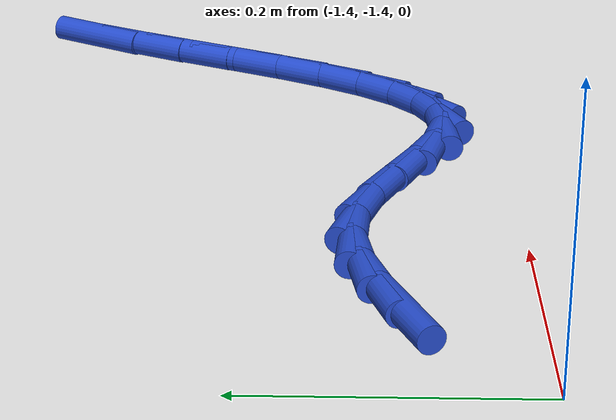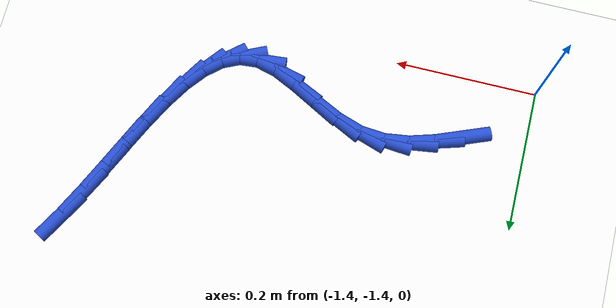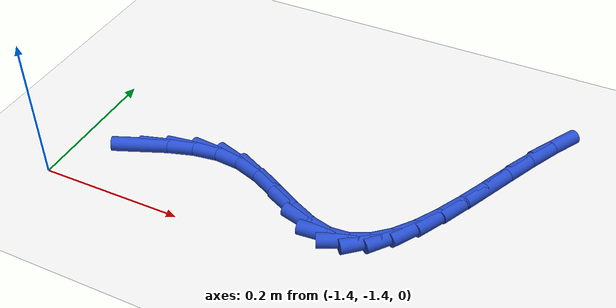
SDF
<sdf version="1.6">
 <world name="default">
  <model name="ground_plane">
   <static>1</static>
   <link name="link">
    <collision name="collision">
     <geometry><plane><normal>0 0 1</normal><size>100 100</size></plane></geometry>
     <surface><friction><ode><mu>100</mu><mu2>50</mu2></ode></friction></surface>
    </collision>
    <visual name="visual">
     <cast_shadows>0</cast_shadows>
     <geometry><plane><normal>0 0 1</normal><size>100 100</size></plane></geometry>
     <material>
      <script><uri>file://media/materials/scripts/gazebo.material</uri><name>Gazebo/WhiteGlow</name></script>
     </material>
    </visual>
   </link>
  </model>
  <model name="line">
   <link name="link_182">
    <pose>-1.3107985322751012 -1.3107673132790016 0.01 0 1.57 0.3865926118420704</pose>
    <collision name="collision">
     <geometry><cylinder><radius>0.01</radius><length>0.08</length></cylinder></geometry>
    </collision>
    <visual name="visual">
     <material>
      <script><name>Gazebo/Blue</name><uri>file://media/materials/scripts/gazebo.material</uri></script>
     </material>
     <geometry><cylinder><radius>0.01</radius><length>0.08</length></cylinder></geometry>
    </visual>
   </link>
   <link name="link_183">
    <pose>-1.2760528738541292 -1.2966231427445267 0.01 0 1.57 0.2972645721738736</pose>
    <collision name="collision">
     <geometry><cylinder><radius>0.01</radius><length>0.08</length></cylinder></geometry>
    </collision>
    <visual name="visual">
     <material>
      <script><name>Gazebo/Blue</name><uri>file://media/materials/scripts/gazebo.material</uri></script>
     </material>
     <geometry><cylinder><radius>0.01</radius><length>0.08</length></cylinder></geometry>
    </visual>
   </link>
   <link name="link_184">
    <pose>-1.2412891281372862 -1.2859735613233292 0.01 0 1.57 0.14160625556303155</pose>
    <collision name="collision">
     <geometry><cylinder><radius>0.01</radius><length>0.08</length></cylinder></geometry>
    </collision>
    <visual name="visual">
     <material>
      <script><name>Gazebo/Blue</name><uri>file://media/materials/scripts/gazebo.material</uri></script>
     </material>
     <geometry><cylinder><radius>0.01</radius><length>0.08</length></cylinder></geometry>
    </visual>
   </link>
   <link name="link_185">
    <pose>-1.2064455579504396 -1.281006247272323 0.01 0 1.57 -0.0827584258536055</pose>
    <collision name="collision">
     <geometry><cylinder><radius>0.01</radius><length>0.08</length></cylinder></geometry>
    </collision>
    <visual name="visual">
     <material>
      <script><name>Gazebo/Blue</name><uri>file://media/materials/scripts/gazebo.material</uri></script>
     </material>
     <geometry><cylinder><radius>0.01</radius><length>0.08</length></cylinder></geometry>
    </visual>
   </link>
   <link name="link_186">
    <pose>-1.1714605035194308 -1.2839081834110608 0.01 0 1.57 -0.31955640378051064</pose>
    <collision name="collision">
     <geometry><cylinder><radius>0.01</radius><length>0.08</length></cylinder></geometry>
    </collision>
    <visual name="visual">
     <material>
      <script><name>Gazebo/Blue</name><uri>file://media/materials/scripts/gazebo.material</uri></script>
     </material>
     <geometry><cylinder><radius>0.01</radius><length>0.08</length></cylinder></geometry>
    </visual>
   </link>
   <link name="link_187">
    <pose>-1.1364241979647156 -1.2955015976285895 0.01 0 1.57 -0.4549689984536196</pose>
    <collision name="collision">
     <geometry><cylinder><radius>0.01</radius><length>0.08</length></cylinder></geometry>
    </collision>
    <visual name="visual">
     <material>
      <script><name>Gazebo/Blue</name><uri>file://media/materials/scripts/gazebo.material</uri></script>
     </material>
     <geometry><cylinder><radius>0.01</radius><length>0.08</length></cylinder></geometry>
    </visual>
   </link>
   <link name="link_188">
    <pose>-1.1018961057134669 -1.3123926829493828 0.01 0 1.57 -0.49428625190031267</pose>
    <collision name="collision">
     <geometry><cylinder><radius>0.01</radius><length>0.08</length></cylinder></geometry>
    </collision>
    <visual name="visual">
     <material>
      <script><name>Gazebo/Blue</name><uri>file://media/materials/scripts/gazebo.material</uri></script>
     </material>
     <geometry><cylinder><radius>0.01</radius><length>0.08</length></cylinder></geometry>
    </visual>
   </link>
   <link name="link_189">
    <pose>-1.0685260188930086 -1.3303760396341204 0.01 0 1.57 -0.44029347188843426</pose>
    <collision name="collision">
     <geometry><cylinder><radius>0.01</radius><length>0.08</length></cylinder></geometry>
    </collision>
    <visual name="visual">
     <material>
      <script><name>Gazebo/Blue</name><uri>file://media/materials/scripts/gazebo.material</uri></script>
     </material>
     <geometry><cylinder><radius>0.01</radius><length>0.08</length></cylinder></geometry>
    </visual>
   </link>
   <link name="link_190">
    <pose>-1.0369637296306653 -1.3452462679434818 0.01 0 1.57 -0.25423167847657807</pose>
    <collision name="collision">
     <geometry><cylinder><radius>0.01</radius><length>0.08</length></cylinder></geometry>
    </collision>
    <visual name="visual">
     <material>
      <script><name>Gazebo/Blue</name><uri>file://media/materials/scripts/gazebo.material</uri></script>
     </material>
     <geometry><cylinder><radius>0.01</radius><length>0.08</length></cylinder></geometry>
    </visual>
   </link>
   <link name="link_191">
    <pose>-1.0078566682148198 -1.3528098660920425 0.01 0 1.57 0.08619695661308117</pose>
    <collision name="collision">
     <geometry><cylinder><radius>0.01</radius><length>0.08</length></cylinder></geometry>
    </collision>
    <visual name="visual">
     <material>
      <script><name>Gazebo/Blue</name><uri>file://media/materials/scripts/gazebo.material</uri></script>
     </material>
     <geometry><cylinder><radius>0.01</radius><length>0.08</length></cylinder></geometry>
    </visual>
   </link>
   <link name="link_192">
    <pose>-0.9815225482658552 -1.3505343065656412 0.01 0 1.57 0.44133622871466277</pose>
    <collision name="collision">
     <geometry><cylinder><radius>0.01</radius><length>0.08</length></cylinder></geometry>
    </collision>
    <visual name="visual">
     <material>
      <script><name>Gazebo/Blue</name><uri>file://media/materials/scripts/gazebo.material</uri></script>
     </material>
     <geometry><cylinder><radius>0.01</radius><length>0.08</length></cylinder></geometry>
    </visual>
   </link>
   <link name="link_193">
    <pose>-0.9576136185029434 -1.339239394888213 0.01 0 1.57 0.7167172054319497</pose>
    <collision name="collision">
     <geometry><cylinder><radius>0.01</radius><length>0.08</length></cylinder></geometry>
    </collision>
    <visual name="visual">
     <material>
      <script><name>Gazebo/Blue</name><uri>file://media/materials/scripts/gazebo.material</uri></script>
     </material>
     <geometry><cylinder><radius>0.01</radius><length>0.08</length></cylinder></geometry>
    </visual>
   </link>
   <link name="link_194">
    <pose>-0.9357020455100151 -1.3201483567899803 0.01 0 1.57 0.9005644696736992</pose>
    <collision name="collision">
     <geometry><cylinder><radius>0.01</radius><length>0.08</length></cylinder></geometry>
    </collision>
    <visual name="visual">
     <material>
      <script><name>Gazebo/Blue</name><uri>file://media/materials/scripts/gazebo.material</uri></script>
     </material>
     <geometry><cylinder><radius>0.01</radius><length>0.08</length></cylinder></geometry>
    </visual>
   </link>
   <link name="link_195">
    <pose>-0.9153599958710017 -1.2944844180011652 0.01 0 1.57 1.0164548919703689</pose>
    <collision name="collision">
     <geometry><cylinder><radius>0.01</radius><length>0.08</length></cylinder></geometry>
    </collision>
    <visual name="visual">
     <material>
      <script><name>Gazebo/Blue</name><uri>file://media/materials/scripts/gazebo.material</uri></script>
     </material>
     <geometry><cylinder><radius>0.01</radius><length>0.08</length></cylinder></geometry>
    </visual>
   </link>
   <link name="link_196">
    <pose>-0.8961596361698344 -1.26347080425199 0.01 0 1.57 1.0865026376999591</pose>
    <collision name="collision">
     <geometry><cylinder><radius>0.01</radius><length>0.08</length></cylinder></geometry>
    </collision>
    <visual name="visual">
     <material>
      <script><name>Gazebo/Blue</name><uri>file://media/materials/scripts/gazebo.material</uri></script>
     </material>
     <geometry><cylinder><radius>0.01</radius><length>0.08</length></cylinder></geometry>
    </visual>
   </link>
   <link name="link_197">
    <pose>-0.8776731329904441 -1.228330741272676 0.01 0 1.57 1.1245653218309286</pose>
    <collision name="collision">
     <geometry><cylinder><radius>0.01</radius><length>0.08</length></cylinder></geometry>
    </collision>
    <visual name="visual">
     <material>
      <script><name>Gazebo/Blue</name><uri>file://media/materials/scripts/gazebo.material</uri></script>
     </material>
     <geometry><cylinder><radius>0.01</radius><length>0.08</length></cylinder></geometry>
    </visual>
   </link>
   <link name="link_198">
    <pose>-0.8594726529167628 -1.1902874547934463 0.01 0 1.57 1.1382128494656005</pose>
    <collision name="collision">
     <geometry><cylinder><radius>0.01</radius><length>0.08</length></cylinder></geometry>
    </collision>
    <visual name="visual">
     <material>
      <script><name>Gazebo/Blue</name><uri>file://media/materials/scripts/gazebo.material</uri></script>
     </material>
     <geometry><cylinder><radius>0.01</radius><length>0.08</length></cylinder></geometry>
    </visual>
   </link>
   <link name="link_199">
    <pose>-0.8411303625327214 -1.1505641705445224 0.01 0 1.57 1.1308789203564469</pose>
    <collision name="collision">
     <geometry><cylinder><radius>0.01</radius><length>0.08</length></cylinder></geometry>
    </collision>
    <visual name="visual">
     <material>
      <script><name>Gazebo/Blue</name><uri>file://media/materials/scripts/gazebo.material</uri></script>
     </material>
     <geometry><cylinder><radius>0.01</radius><length>0.08</length></cylinder></geometry>
    </visual>
   </link>
   <link name="link_200">
    <pose>-0.8222184284222507 -1.1103841142561255 0.01 0 1.57 1.1030446918732075</pose>
    <collision name="collision">
     <geometry><cylinder><radius>0.01</radius><length>0.08</length></cylinder></geometry>
    </collision>
    <visual name="visual">
     <material>
      <script><name>Gazebo/Blue</name><uri>file://media/materials/scripts/gazebo.material</uri></script>
     </material>
     <geometry><cylinder><radius>0.01</radius><length>0.08</length></cylinder></geometry>
    </visual>
   </link>
   <link name="link_201">
    <pose>-0.8023090171692827 -1.0709705116584796 0.01 0 1.57 1.0526655694668314</pose>
    <collision name="collision">
     <geometry><cylinder><radius>0.01</radius><length>0.08</length></cylinder></geometry>
    </collision>
    <visual name="visual">
     <material>
      <script><name>Gazebo/Blue</name><uri>file://media/materials/scripts/gazebo.material</uri></script>
     </material>
     <geometry><cylinder><radius>0.01</radius><length>0.08</length></cylinder></geometry>
    </visual>
   </link>
  </model>
 </world>
</sdf>
